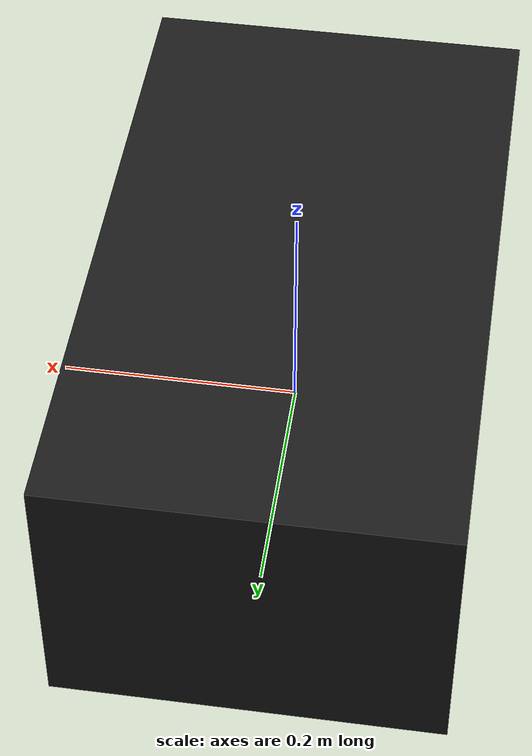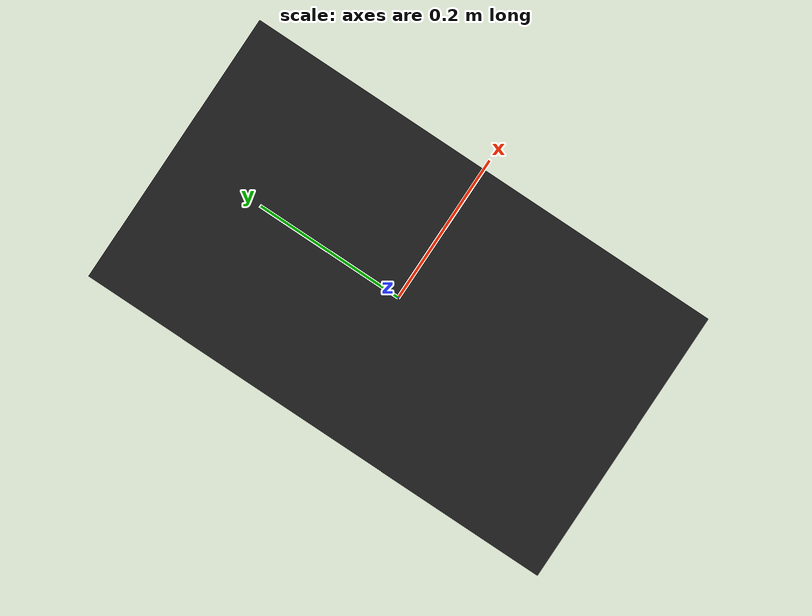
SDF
<?xml version="1.6" ?>
<sdf version="1.9">
  <model name="ultrasonic_bot">
    <static>false</static>

    <!-- Base link -->
    <link name="base_link">
      <pose>0 0 0 0 0 0</pose>
      <inertial>
        <mass>0.1</mass>
        <inertia>
          <ixx>0.001</ixx>
          <iyy>0.001</iyy>
          <izz>0.001</izz>
        </inertia>
      </inertial>
      <collision name="base_collision">
        <geometry>
          <box>
            <size>0.0001 0.00001 0.0000005</size>
          </box>
        </geometry>
      </collision>
      <visual name="base_visual">
        <geometry>
          <box>
            <size>0.0001 0.00001 0.0000005</size>
          </box>
        </geometry>
        <material>
          <ambient>0.7 0.7 0.7 1</ambient>
          <diffuse>0.7 0.7 0.7 1</diffuse>
        </material>
      </visual>
    </link>

    <!-- Ultrasonic sensor link -->
    <link name="ultrasonic_link">
      <pose>0 0 0.05 0 0 0</pose>

      <collision name="sensor_collision">
        <geometry>
          <box>
            <size>0.32 0.56 0.24</size>
          </box>
        </geometry>
      </collision>

      <visual name="sensor_visual">
        <geometry>
          <box>
            <size>0.32 0.56 0.24</size>
          </box>
        </geometry>
        <material>
          <diffuse>0.1 0.1 0.1 1</diffuse>
        </material>
      </visual>

      <!-- Ultrasonic sensor definition -->
      <sensor name="ultrasonic_sensor" type="ray">
        <pose>0 0 0 0 0 0</pose>
        <always_on>true</always_on>
        <update_rate>30</update_rate>
        <visualize>true</visualize>

        <ray>
          <scan>
            <horizontal>
              <samples>1</samples>
              <resolution>1</resolution>
              <min_angle>0</min_angle>
              <max_angle>0</max_angle>
            </horizontal>
          </scan>
          <range>
            <min>0.02</min>
            <max>2.0</max>
            <resolution>0.01</resolution>
          </range>
        </ray>

        <!-- Plugin ROS ↔ Gazebo bridge -->
        <plugin name="ros_gz_range" filename="libros_gz_sim_range_sensor_system.so">
          <ros>
            <namespace>/sim</namespace>
            <argument>topic:=ultrasonic/distance</argument>
          </ros>
        </plugin>
      </sensor>
    </link>

    <!-- Fixed joint between base and ultrasonic link -->
    <joint name="ultrasonic_mount" type="fixed">
      <parent>base_link</parent>
      <child>ultrasonic_link</child>
      <pose>0 0 0.05 0 0 0</pose>
    </joint>
  </model>
</sdf>
